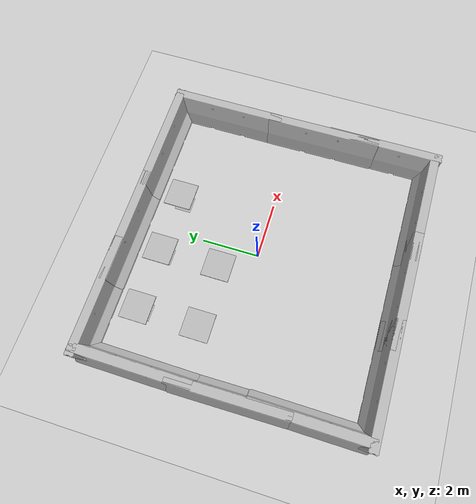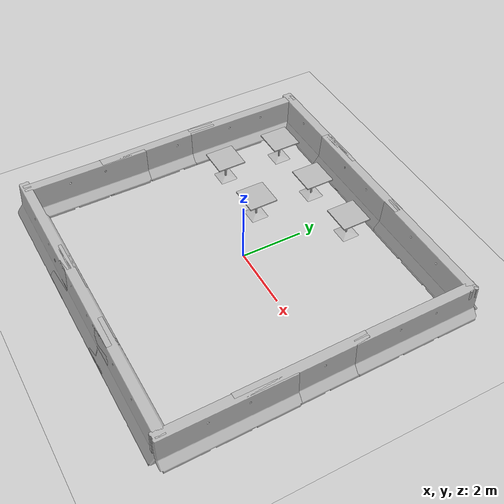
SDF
<sdf version="1.4">
 <world name="default">
  <light name="sun" type="directional">
   <pose>0 0 10 0 -0 0</pose>
   <diffuse>0.8 0.8 0.8 1</diffuse>
   <specular>0.2 0.2 0.2 1</specular>
   <attenuation>
    <range>1000</range>
    <constant>0.9</constant>
    <linear>0.01</linear>
    <quadratic>0.001</quadratic>
   </attenuation>
   <direction>-0.5 0.1 -0.9</direction>
  </light>
  <model name="ground_plane">
   <static>1</static>
   <link name="link">
    <collision name="collision">
     <geometry><plane><normal>0 0 1</normal><size>100 100</size></plane></geometry>
     <surface><friction><ode><mu>100</mu><mu2>50</mu2></ode></friction></surface>
    </collision>
    <visual name="visual">
     <cast_shadows>0</cast_shadows>
     <geometry><plane><normal>0 0 1</normal><size>100 100</size></plane></geometry>
     <material>
      <script><uri>file://media/materials/scripts/gazebo.material</uri><name>Gazebo/Grey</name></script>
     </material>
    </visual>
    <velocity_decay><linear>0</linear><angular>0</angular></velocity_decay>
   </link>
  </model>
  <physics type="ode">
   <max_step_size>0.001</max_step_size>
   <real_time_factor>1</real_time_factor>
   <real_time_update_rate>1000</real_time_update_rate>
   <gravity>0 0 -9.8</gravity>
  </physics>
  <scene><ambient>0.4 0.4 0.4 1</ambient><background>0.7 0.7 0.7 1</background><shadows>1</shadows></scene>
  <spherical_coordinates>
   <surface_model>EARTH_WGS84</surface_model>
   <latitude_deg>0</latitude_deg>
   <longitude_deg>0</longitude_deg>
   <elevation>0</elevation>
   <heading_deg>0</heading_deg>
  </spherical_coordinates>
  <model name="cafe_table">
   <static>1</static>
   <link name="link">
    <collision name="surface">
     <pose>0 0 0.755 0 -0 0</pose>
     <geometry><box><size>0.913 0.913 0.04</size></box></geometry>
    </collision>
    <collision name="column">
     <pose>0 0 0.37 0 -0 0</pose>
     <geometry><box><size>0.042 0.042 0.74</size></box></geometry>
    </collision>
    <collision name="base">
     <pose>0 0 0.02 0 -0 0</pose>
     <geometry><box><size>0.56 0.56 0.04</size></box></geometry>
    </collision>
    <visual name="visual">
     <geometry><mesh><uri>model://cafe_table/meshes/cafe_table.dae</uri></mesh></geometry>
    </visual>
    <velocity_decay><linear>0</linear><angular>0</angular></velocity_decay>
   </link>
   <pose>1 3 0.44167 0 -0 0</pose>
  </model>
  <model name="cafe_table_0">
   <static>1</static>
   <link name="link">
    <collision name="surface">
     <pose>0 0 0.755 0 -0 0</pose>
     <geometry><box><size>0.913 0.913 0.04</size></box></geometry>
    </collision>
    <collision name="column">
     <pose>0 0 0.37 0 -0 0</pose>
     <geometry><box><size>0.042 0.042 0.74</size></box></geometry>
    </collision>
    <collision name="base">
     <pose>0 0 0.02 0 -0 0</pose>
     <geometry><box><size>0.56 0.56 0.04</size></box></geometry>
    </collision>
    <visual name="visual">
     <geometry><mesh><uri>model://cafe_table/meshes/cafe_table.dae</uri></mesh></geometry>
    </visual>
    <velocity_decay><linear>0</linear><angular>0</angular></velocity_decay>
   </link>
   <pose>-1 3 0.405338 0 -0 0</pose>
  </model>
  <model name="cafe_table_1">
   <static>1</static>
   <link name="link">
    <collision name="surface">
     <pose>0 0 0.755 0 -0 0</pose>
     <geometry><box><size>0.913 0.913 0.04</size></box></geometry>
    </collision>
    <collision name="column">
     <pose>0 0 0.37 0 -0 0</pose>
     <geometry><box><size>0.042 0.042 0.74</size></box></geometry>
    </collision>
    <collision name="base">
     <pose>0 0 0.02 0 -0 0</pose>
     <geometry><box><size>0.56 0.56 0.04</size></box></geometry>
    </collision>
    <visual name="visual">
     <geometry><mesh><uri>model://cafe_table/meshes/cafe_table.dae</uri></mesh></geometry>
    </visual>
    <velocity_decay><linear>0</linear><angular>0</angular></velocity_decay>
   </link>
   <pose>-3 3 0.416136 0 -0 0</pose>
  </model>
  <model name="cafe_table_2">
   <static>1</static>
   <link name="link">
    <collision name="surface">
     <pose>0 0 0.755 0 -0 0</pose>
     <geometry><box><size>0.913 0.913 0.04</size></box></geometry>
    </collision>
    <collision name="column">
     <pose>0 0 0.37 0 -0 0</pose>
     <geometry><box><size>0.042 0.042 0.74</size></box></geometry>
    </collision>
    <collision name="base">
     <pose>0 0 0.02 0 -0 0</pose>
     <geometry><box><size>0.56 0.56 0.04</size></box></geometry>
    </collision>
    <visual name="visual">
     <geometry><mesh><uri>model://cafe_table/meshes/cafe_table.dae</uri></mesh></geometry>
    </visual>
    <velocity_decay><linear>0</linear><angular>0</angular></velocity_decay>
   </link>
   <pose>-1 1 0.444871 0 -0 0</pose>
  </model>
  <model name="cafe_table_3">
   <static>1</static>
   <link name="link">
    <collision name="surface">
     <pose>0 0 0.755 0 -0 0</pose>
     <geometry><box><size>0.913 0.913 0.04</size></box></geometry>
    </collision>
    <collision name="column">
     <pose>0 0 0.37 0 -0 0</pose>
     <geometry><box><size>0.042 0.042 0.74</size></box></geometry>
    </collision>
    <collision name="base">
     <pose>0 0 0.02 0 -0 0</pose>
     <geometry><box><size>0.56 0.56 0.04</size></box></geometry>
    </collision>
    <visual name="visual">
     <geometry><mesh><uri>model://cafe_table/meshes/cafe_table.dae</uri></mesh></geometry>
    </visual>
    <velocity_decay><linear>0</linear><angular>0</angular></velocity_decay>
   </link>
   <pose>-3 1 0.414872 0 -0 0</pose>
  </model>
  <model name="jersey_barrier">
   <static>1</static>
   <link name="link">
    <visual name="visual">
     <geometry><mesh><uri>model://jersey_barrier/meshes/jersey_barrier.dae</uri></mesh></geometry>
    </visual>
    <collision name="upright">
     <pose>0 0 0.5715 0 -0 0</pose>
     <geometry><box><size>4.06542 0.3063 1.143</size></box></geometry>
    </collision>
    <collision name="base">
     <pose>0 0 0.032258 0 -0 0</pose>
     <geometry><box><size>4.06542 0.8107 0.064516</size></box></geometry>
    </collision>
    <collision name="base2">
     <pose>0 0 0.1 0 -0 0</pose>
     <geometry><box><size>4.06542 0.65 0.1</size></box></geometry>
    </collision>
    <collision name="base3">
     <pose>0 0 0.2 0 -0 0</pose>
     <geometry><box><size>4.06542 0.5 0.1</size></box></geometry>
    </collision>
    <collision name="left-angle">
     <pose>0 -0.224 0.2401 0.9 -0 0</pose>
     <geometry><box><size>4.06542 0.5 0.064516</size></box></geometry>
    </collision>
    <collision name="right-angle">
     <pose>0 0.224 0.2401 -0.9 0 0</pose>
     <geometry><box><size>4.06542 0.5 0.064516</size></box></geometry>
    </collision>
    <velocity_decay><linear>0</linear><angular>0</angular></velocity_decay>
   </link>
   <pose>3 4.45345 0 0 -0 0</pose>
  </model>
  <model name="jersey_barrier_0">
   <static>1</static>
   <link name="link">
    <visual name="visual">
     <geometry><mesh><uri>model://jersey_barrier/meshes/jersey_barrier.dae</uri></mesh></geometry>
    </visual>
    <collision name="upright">
     <pose>0 0 0.5715 0 -0 0</pose>
     <geometry><box><size>4.06542 0.3063 1.143</size></box></geometry>
    </collision>
    <collision name="base">
     <pose>0 0 0.032258 0 -0 0</pose>
     <geometry><box><size>4.06542 0.8107 0.064516</size></box></geometry>
    </collision>
    <collision name="base2">
     <pose>0 0 0.1 0 -0 0</pose>
     <geometry><box><size>4.06542 0.65 0.1</size></box></geometry>
    </collision>
    <collision name="base3">
     <pose>0 0 0.2 0 -0 0</pose>
     <geometry><box><size>4.06542 0.5 0.1</size></box></geometry>
    </collision>
    <collision name="left-angle">
     <pose>0 -0.224 0.2401 0.9 -0 0</pose>
     <geometry><box><size>4.06542 0.5 0.064516</size></box></geometry>
    </collision>
    <collision name="right-angle">
     <pose>0 0.224 0.2401 -0.9 0 0</pose>
     <geometry><box><size>4.06542 0.5 0.064516</size></box></geometry>
    </collision>
    <velocity_decay><linear>0</linear><angular>0</angular></velocity_decay>
   </link>
   <pose>3 -5 0 0 -0 0</pose>
  </model>
  <model name="jersey_barrier_1">
   <static>1</static>
   <link name="link">
    <visual name="visual">
     <geometry><mesh><uri>model://jersey_barrier/meshes/jersey_barrier.dae</uri></mesh></geometry>
    </visual>
    <collision name="upright">
     <pose>0 0 0.5715 0 -0 0</pose>
     <geometry><box><size>4.06542 0.3063 1.143</size></box></geometry>
    </collision>
    <collision name="base">
     <pose>0 0 0.032258 0 -0 0</pose>
     <geometry><box><size>4.06542 0.8107 0.064516</size></box></geometry>
    </collision>
    <collision name="base2">
     <pose>0 0 0.1 0 -0 0</pose>
     <geometry><box><size>4.06542 0.65 0.1</size></box></geometry>
    </collision>
    <collision name="base3">
     <pose>0 0 0.2 0 -0 0</pose>
     <geometry><box><size>4.06542 0.5 0.1</size></box></geometry>
    </collision>
    <collision name="left-angle">
     <pose>0 -0.224 0.2401 0.9 -0 0</pose>
     <geometry><box><size>4.06542 0.5 0.064516</size></box></geometry>
    </collision>
    <collision name="right-angle">
     <pose>0 0.224 0.2401 -0.9 0 0</pose>
     <geometry><box><size>4.06542 0.5 0.064516</size></box></geometry>
    </collision>
    <velocity_decay><linear>0</linear><angular>0</angular></velocity_decay>
   </link>
   <pose>-0.48702 4.45574 0 0 -0 0</pose>
  </model>
  <model name="jersey_barrier_2">
   <static>1</static>
   <link name="link">
    <visual name="visual">
     <geometry><mesh><uri>model://jersey_barrier/meshes/jersey_barrier.dae</uri></mesh></geometry>
    </visual>
    <collision name="upright">
     <pose>0 0 0.5715 0 -0 0</pose>
     <geometry><box><size>4.06542 0.3063 1.143</size></box></geometry>
    </collision>
    <collision name="base">
     <pose>0 0 0.032258 0 -0 0</pose>
     <geometry><box><size>4.06542 0.8107 0.064516</size></box></geometry>
    </collision>
    <collision name="base2">
     <pose>0 0 0.1 0 -0 0</pose>
     <geometry><box><size>4.06542 0.65 0.1</size></box></geometry>
    </collision>
    <collision name="base3">
     <pose>0 0 0.2 0 -0 0</pose>
     <geometry><box><size>4.06542 0.5 0.1</size></box></geometry>
    </collision>
    <collision name="left-angle">
     <pose>0 -0.224 0.2401 0.9 -0 0</pose>
     <geometry><box><size>4.06542 0.5 0.064516</size></box></geometry>
    </collision>
    <collision name="right-angle">
     <pose>0 0.224 0.2401 -0.9 0 0</pose>
     <geometry><box><size>4.06542 0.5 0.064516</size></box></geometry>
    </collision>
    <velocity_decay><linear>0</linear><angular>0</angular></velocity_decay>
   </link>
   <pose>-3 4.46579 0 0 -0 0</pose>
  </model>
  <model name="jersey_barrier_3">
   <static>1</static>
   <link name="link">
    <visual name="visual">
     <geometry><mesh><uri>model://jersey_barrier/meshes/jersey_barrier.dae</uri></mesh></geometry>
    </visual>
    <collision name="upright">
     <pose>0 0 0.5715 0 -0 0</pose>
     <geometry><box><size>4.06542 0.3063 1.143</size></box></geometry>
    </collision>
    <collision name="base">
     <pose>0 0 0.032258 0 -0 0</pose>
     <geometry><box><size>4.06542 0.8107 0.064516</size></box></geometry>
    </collision>
    <collision name="base2">
     <pose>0 0 0.1 0 -0 0</pose>
     <geometry><box><size>4.06542 0.65 0.1</size></box></geometry>
    </collision>
    <collision name="base3">
     <pose>0 0 0.2 0 -0 0</pose>
     <geometry><box><size>4.06542 0.5 0.1</size></box></geometry>
    </collision>
    <collision name="left-angle">
     <pose>0 -0.224 0.2401 0.9 -0 0</pose>
     <geometry><box><size>4.06542 0.5 0.064516</size></box></geometry>
    </collision>
    <collision name="right-angle">
     <pose>0 0.224 0.2401 -0.9 0 0</pose>
     <geometry><box><size>4.06542 0.5 0.064516</size></box></geometry>
    </collision>
    <velocity_decay><linear>0</linear><angular>0</angular></velocity_decay>
   </link>
   <pose>0 -5 0 0 -0 0</pose>
  </model>
  <model name="jersey_barrier_4">
   <static>1</static>
   <link name="link">
    <visual name="visual">
     <geometry><mesh><uri>model://jersey_barrier/meshes/jersey_barrier.dae</uri></mesh></geometry>
    </visual>
    <collision name="upright">
     <pose>0 0 0.5715 0 -0 0</pose>
     <geometry><box><size>4.06542 0.3063 1.143</size></box></geometry>
    </collision>
    <collision name="base">
     <pose>0 0 0.032258 0 -0 0</pose>
     <geometry><box><size>4.06542 0.8107 0.064516</size></box></geometry>
    </collision>
    <collision name="base2">
     <pose>0 0 0.1 0 -0 0</pose>
     <geometry><box><size>4.06542 0.65 0.1</size></box></geometry>
    </collision>
    <collision name="base3">
     <pose>0 0 0.2 0 -0 0</pose>
     <geometry><box><size>4.06542 0.5 0.1</size></box></geometry>
    </collision>
    <collision name="left-angle">
     <pose>0 -0.224 0.2401 0.9 -0 0</pose>
     <geometry><box><size>4.06542 0.5 0.064516</size></box></geometry>
    </collision>
    <collision name="right-angle">
     <pose>0 0.224 0.2401 -0.9 0 0</pose>
     <geometry><box><size>4.06542 0.5 0.064516</size></box></geometry>
    </collision>
    <velocity_decay><linear>0</linear><angular>0</angular></velocity_decay>
   </link>
   <pose>-3 -5 0 0 -0 0</pose>
  </model>
  <model name="jersey_barrier_5">
   <static>1</static>
   <link name="link">
    <visual name="visual">
     <geometry><mesh><uri>model://jersey_barrier/meshes/jersey_barrier.dae</uri></mesh></geometry>
    </visual>
    <collision name="upright">
     <pose>0 0 0.5715 0 -0 0</pose>
     <geometry><box><size>4.06542 0.3063 1.143</size></box></geometry>
    </collision>
    <collision name="base">
     <pose>0 0 0.032258 0 -0 0</pose>
     <geometry><box><size>4.06542 0.8107 0.064516</size></box></geometry>
    </collision>
    <collision name="base2">
     <pose>0 0 0.1 0 -0 0</pose>
     <geometry><box><size>4.06542 0.65 0.1</size></box></geometry>
    </collision>
    <collision name="base3">
     <pose>0 0 0.2 0 -0 0</pose>
     <geometry><box><size>4.06542 0.5 0.1</size></box></geometry>
    </collision>
    <collision name="left-angle">
     <pose>0 -0.224 0.2401 0.9 -0 0</pose>
     <geometry><box><size>4.06542 0.5 0.064516</size></box></geometry>
    </collision>
    <collision name="right-angle">
     <pose>0 0.224 0.2401 -0.9 0 0</pose>
     <geometry><box><size>4.06542 0.5 0.064516</size></box></geometry>
    </collision>
    <velocity_decay><linear>0</linear><angular>0</angular></velocity_decay>
   </link>
   <pose>4.86361 2.58954 0 0 0 -1.56748</pose>
  </model>
  <model name="jersey_barrier_6">
   <static>1</static>
   <link name="link">
    <visual name="visual">
     <geometry><mesh><uri>model://jersey_barrier/meshes/jersey_barrier.dae</uri></mesh></geometry>
    </visual>
    <collision name="upright">
     <pose>0 0 0.5715 0 -0 0</pose>
     <geometry><box><size>4.06542 0.3063 1.143</size></box></geometry>
    </collision>
    <collision name="base">
     <pose>0 0 0.032258 0 -0 0</pose>
     <geometry><box><size>4.06542 0.8107 0.064516</size></box></geometry>
    </collision>
    <collision name="base2">
     <pose>0 0 0.1 0 -0 0</pose>
     <geometry><box><size>4.06542 0.65 0.1</size></box></geometry>
    </collision>
    <collision name="base3">
     <pose>0 0 0.2 0 -0 0</pose>
     <geometry><box><size>4.06542 0.5 0.1</size></box></geometry>
    </collision>
    <collision name="left-angle">
     <pose>0 -0.224 0.2401 0.9 -0 0</pose>
     <geometry><box><size>4.06542 0.5 0.064516</size></box></geometry>
    </collision>
    <collision name="right-angle">
     <pose>0 0.224 0.2401 -0.9 0 0</pose>
     <geometry><box><size>4.06542 0.5 0.064516</size></box></geometry>
    </collision>
    <velocity_decay><linear>0</linear><angular>0</angular></velocity_decay>
   </link>
   <pose>4.87738 -0.974167 0 0 -0 1.57867</pose>
  </model>
  <model name="jersey_barrier_7">
   <static>1</static>
   <link name="link">
    <visual name="visual">
     <geometry><mesh><uri>model://jersey_barrier/meshes/jersey_barrier.dae</uri></mesh></geometry>
    </visual>
    <collision name="upright">
     <pose>0 0 0.5715 0 -0 0</pose>
     <geometry><box><size>4.06542 0.3063 1.143</size></box></geometry>
    </collision>
    <collision name="base">
     <pose>0 0 0.032258 0 -0 0</pose>
     <geometry><box><size>4.06542 0.8107 0.064516</size></box></geometry>
    </collision>
    <collision name="base2">
     <pose>0 0 0.1 0 -0 0</pose>
     <geometry><box><size>4.06542 0.65 0.1</size></box></geometry>
    </collision>
    <collision name="base3">
     <pose>0 0 0.2 0 -0 0</pose>
     <geometry><box><size>4.06542 0.5 0.1</size></box></geometry>
    </collision>
    <collision name="left-angle">
     <pose>0 -0.224 0.2401 0.9 -0 0</pose>
     <geometry><box><size>4.06542 0.5 0.064516</size></box></geometry>
    </collision>
    <collision name="right-angle">
     <pose>0 0.224 0.2401 -0.9 0 0</pose>
     <geometry><box><size>4.06542 0.5 0.064516</size></box></geometry>
    </collision>
    <velocity_decay><linear>0</linear><angular>0</angular></velocity_decay>
   </link>
   <pose>4.91409 -3.2008 0 0 -0 1.57475</pose>
  </model>
  <model name="jersey_barrier_8">
   <static>1</static>
   <link name="link">
    <visual name="visual">
     <geometry><mesh><uri>model://jersey_barrier/meshes/jersey_barrier.dae</uri></mesh></geometry>
    </visual>
    <collision name="upright">
     <pose>0 0 0.5715 0 -0 0</pose>
     <geometry><box><size>4.06542 0.3063 1.143</size></box></geometry>
    </collision>
    <collision name="base">
     <pose>0 0 0.032258 0 -0 0</pose>
     <geometry><box><size>4.06542 0.8107 0.064516</size></box></geometry>
    </collision>
    <collision name="base2">
     <pose>0 0 0.1 0 -0 0</pose>
     <geometry><box><size>4.06542 0.65 0.1</size></box></geometry>
    </collision>
    <collision name="base3">
     <pose>0 0 0.2 0 -0 0</pose>
     <geometry><box><size>4.06542 0.5 0.1</size></box></geometry>
    </collision>
    <collision name="left-angle">
     <pose>0 -0.224 0.2401 0.9 -0 0</pose>
     <geometry><box><size>4.06542 0.5 0.064516</size></box></geometry>
    </collision>
    <collision name="right-angle">
     <pose>0 0.224 0.2401 -0.9 0 0</pose>
     <geometry><box><size>4.06542 0.5 0.064516</size></box></geometry>
    </collision>
    <velocity_decay><linear>0</linear><angular>0</angular></velocity_decay>
   </link>
   <pose>-4.75925 2.59348 0 0 0 -1.57646</pose>
  </model>
  <model name="jersey_barrier_9">
   <static>1</static>
   <link name="link">
    <visual name="visual">
     <geometry><mesh><uri>model://jersey_barrier/meshes/jersey_barrier.dae</uri></mesh></geometry>
    </visual>
    <collision name="upright">
     <pose>0 0 0.5715 0 -0 0</pose>
     <geometry><box><size>4.06542 0.3063 1.143</size></box></geometry>
    </collision>
    <collision name="base">
     <pose>0 0 0.032258 0 -0 0</pose>
     <geometry><box><size>4.06542 0.8107 0.064516</size></box></geometry>
    </collision>
    <collision name="base2">
     <pose>0 0 0.1 0 -0 0</pose>
     <geometry><box><size>4.06542 0.65 0.1</size></box></geometry>
    </collision>
    <collision name="base3">
     <pose>0 0 0.2 0 -0 0</pose>
     <geometry><box><size>4.06542 0.5 0.1</size></box></geometry>
    </collision>
    <collision name="left-angle">
     <pose>0 -0.224 0.2401 0.9 -0 0</pose>
     <geometry><box><size>4.06542 0.5 0.064516</size></box></geometry>
    </collision>
    <collision name="right-angle">
     <pose>0 0.224 0.2401 -0.9 0 0</pose>
     <geometry><box><size>4.06542 0.5 0.064516</size></box></geometry>
    </collision>
    <velocity_decay><linear>0</linear><angular>0</angular></velocity_decay>
   </link>
   <pose>-4.75789 -0.535441 0 0 0 -1.55847</pose>
  </model>
  <model name="jersey_barrier_10">
   <static>1</static>
   <link name="link">
    <visual name="visual">
     <geometry><mesh><uri>model://jersey_barrier/meshes/jersey_barrier.dae</uri></mesh></geometry>
    </visual>
    <collision name="upright">
     <pose>0 0 0.5715 0 -0 0</pose>
     <geometry><box><size>4.06542 0.3063 1.143</size></box></geometry>
    </collision>
    <collision name="base">
     <pose>0 0 0.032258 0 -0 0</pose>
     <geometry><box><size>4.06542 0.8107 0.064516</size></box></geometry>
    </collision>
    <collision name="base2">
     <pose>0 0 0.1 0 -0 0</pose>
     <geometry><box><size>4.06542 0.65 0.1</size></box></geometry>
    </collision>
    <collision name="base3">
     <pose>0 0 0.2 0 -0 0</pose>
     <geometry><box><size>4.06542 0.5 0.1</size></box></geometry>
    </collision>
    <collision name="left-angle">
     <pose>0 -0.224 0.2401 0.9 -0 0</pose>
     <geometry><box><size>4.06542 0.5 0.064516</size></box></geometry>
    </collision>
    <collision name="right-angle">
     <pose>0 0.224 0.2401 -0.9 0 0</pose>
     <geometry><box><size>4.06542 0.5 0.064516</size></box></geometry>
    </collision>
    <velocity_decay><linear>0</linear><angular>0</angular></velocity_decay>
   </link>
   <pose>-4.73154 -3.07587 0 0 0 -1.57354</pose>
  </model>
 </world>
</sdf>
